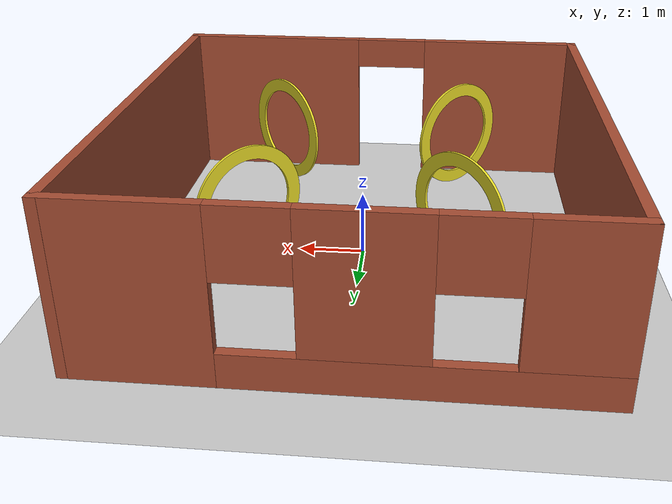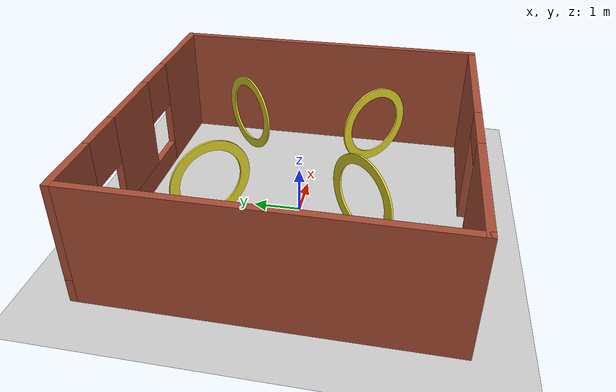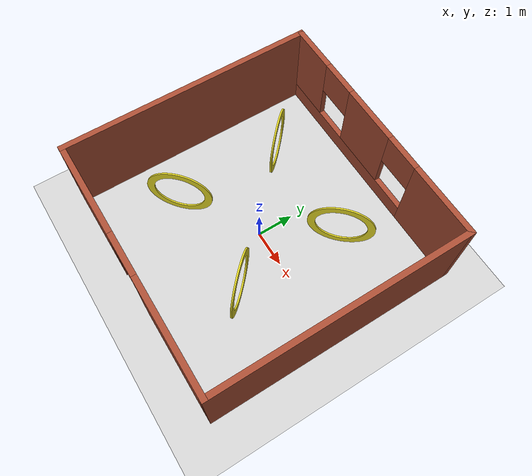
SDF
<sdf version='1.6'>
  <world name='default'>
    <light name='sun' type='directional'>
      <cast_shadows>1</cast_shadows>
      <pose frame=''>0 0 10 0 -0 0</pose>
      <diffuse>0.8 0.8 0.8 1</diffuse>
      <specular>0.2 0.2 0.2 1</specular>
      <attenuation>
        <range>1000</range>
        <constant>0.9</constant>
        <linear>0.01</linear>
        <quadratic>0.001</quadratic>
      </attenuation>
      <direction>-0.5 0.1 -0.9</direction>
    </light>
    <model name='ground_plane'>
      <static>1</static>
      <link name='link'>
        <collision name='collision'>
          <geometry>
            <plane>
              <normal>0 0 1</normal>
              <size>100 100</size>
            </plane>
          </geometry>
          <surface>
            <friction>
              <ode>
                <mu>100</mu>
                <mu2>50</mu2>
              </ode>
              <torsional>
                <ode/>
              </torsional>
            </friction>
            <contact>
              <ode/>
            </contact>
            <bounce/>
          </surface>
          <max_contacts>10</max_contacts>
        </collision>
        <visual name='visual'>
          <cast_shadows>0</cast_shadows>
          <geometry>
            <plane>
              <normal>0 0 1</normal>
              <size>100 100</size>
            </plane>
          </geometry>
          <material>
            <script>
              <uri>file://media/materials/scripts/gazebo.material</uri>
              <name>Gazebo/Grey</name>
            </script>
          </material>
        </visual>
        <self_collide>0</self_collide>
        <enable_wind>0</enable_wind>
        <kinematic>0</kinematic>
      </link>
    </model>
    <gravity>0 0 -9.8</gravity>
    <magnetic_field>6e-06 2.3e-05 -4.2e-05</magnetic_field>
    <atmosphere type='adiabatic'/>
    <physics name='default_physics' default='0' type='ode'>
      <max_step_size>0.001</max_step_size>
      <real_time_factor>1</real_time_factor>
      <real_time_update_rate>1000</real_time_update_rate>
    </physics>
    <scene>
      <ambient>0.4 0.4 0.4 1</ambient>
      <background>0.7 0.7 0.7 1</background>
      <shadows>1</shadows>
    </scene>
    <wind/>
    <spherical_coordinates>
      <surface_model>EARTH_WGS84</surface_model>
      <latitude_deg>0</latitude_deg>
      <longitude_deg>0</longitude_deg>
      <elevation>0</elevation>
      <heading_deg>0</heading_deg>
    </spherical_coordinates>
    <include>
      <name>circle_gate_0</name>
      <uri>model://circle_gate</uri>
      <pose>1.414 1.414 0.5 0 0 -0.7854</pose>
    </include>
    <include>
      <name>circle_gate_1</name>
      <uri>model://circle_gate</uri>
      <pose>-1.414 1.414 0.5 0 -0 0.7854</pose>
    </include>
    <include>
      <name>circle_gate_2</name>
      <uri>model://circle_gate</uri>
      <pose>-1.414 -1.414 0.5 0 -0 2.3562</pose>
    </include>
    <include>
      <name>circle_gate_3</name>
      <uri>model://circle_gate</uri>
      <pose>1.414 -1.414 0.5 0 -0 0.7854</pose>
    </include>
    <include>
      <name>room</name>
      <uri>model://room</uri>
      <pose>0 0 0 0 0 0</pose>
    </include>
    <gui fullscreen='0'>
      <camera name='user_camera'>
        <pose frame=''>6.23651 -0.107226 17.2856 0 1.2978 3.01304</pose>
        <view_controller>orbit</view_controller>
        <projection_type>perspective</projection_type>
      </camera>
    </gui>
  </world>
</sdf>

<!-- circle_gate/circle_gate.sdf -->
<sdf version="1.6">
  <model name="circle_gate">
  <static>1</static>
    <link name="link">
      <inertial>
        <mass>10.0</mass>
        <inertia>
          <ixx>10.0</ixx>
          <ixy>0.0</ixy>
          <ixz>0.0</ixz>
          <iyy>10.0</iyy>
          <iyz>0.0</iyz>
          <izz>10.0</izz>
        </inertia>
      </inertial>
      <collision name="collision">
        <pose>0 0 1 0 0 0</pose>
        <geometry>
          <mesh>
            <uri>model://circle_gate/meshes/circle_gate.stl</uri>
            <scale>1 1 1</scale>
          </mesh>
        </geometry>
      </collision>
      <visual name="visual">
        <pose>0 0 1 0 0 0</pose>
        <geometry>
          <mesh>
            <uri>model://circle_gate/meshes/circle_gate.stl</uri>
            <scale>1 1 1</scale>
          </mesh>
        </geometry>
        <material>
          <script>
            <uri>file://media/materials/scripts/gazebo.material</uri>
            <name>Gazebo/Yellow</name>
          </script>
       </material>
      </visual>
    </link>
  </model>
</sdf>

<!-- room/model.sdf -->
<sdf version='1.6'>
  <model name='room'>
    <pose frame=''>-2.67798 -7.40587 0 0 -0 0</pose>
    <link name='Wall_11'>
      <collision name='Wall_11_Collision'>
        <geometry>
          <box>
            <size>7 0.15 2.5</size>
          </box>
        </geometry>
        <pose frame=''>0 0 1.25 0 -0 0</pose>
      </collision>
      <visual name='Wall_11_Visual'>
        <pose frame=''>0 0 1.25 0 -0 0</pose>
        <geometry>
          <box>
            <size>7 0.15 2.5</size>
          </box>
        </geometry>
        <material>
          <script>
            <uri>file://media/materials/scripts/gazebo.material</uri>
            <name>Gazebo/Bricks</name>
          </script>
          <ambient>0.996078 0.47451 0.0196078 1</ambient>
        </material>
        <meta>
          <layer>0</layer>
        </meta>
      </visual>
      <pose frame=''>-3.425 0 0 0 -0 -1.5708</pose>
    </link>
    <link name='Wall_7'>
      <pose frame=''>-0 -3.425 0 0 -0 0</pose>
      <visual name='Wall_7_Visual_0'>
        <pose frame=''>-2.15492 0 1.25 0 -0 0</pose>
        <geometry>
          <box>
            <size>2.69015 0.15 2.5</size>
          </box>
        </geometry>
        <material>
          <script>
            <uri>file://media/materials/scripts/gazebo.material</uri>
            <name>Gazebo/Bricks</name>
          </script>
          <ambient>0.760784 0.662745 0.627451 1</ambient>
        </material>
        <meta>
          <layer>0</layer>
        </meta>
      </visual>
      <collision name='Wall_7_Collision_0'>
        <geometry>
          <box>
            <size>2.69015 0.15 2.5</size>
          </box>
        </geometry>
        <pose frame=''>-2.15492 0 1.25 0 -0 0</pose>
      </collision>
      <visual name='Wall_7_Visual_1'>
        <pose frame=''>1.94508 0 1.25 0 -0 0</pose>
        <geometry>
          <box>
            <size>3.10985 0.15 2.5</size>
          </box>
        </geometry>
        <material>
          <script>
            <uri>file://media/materials/scripts/gazebo.material</uri>
            <name>Gazebo/Bricks</name>
          </script>
          <ambient>0.760784 0.662745 0.627451 1</ambient>
        </material>
        <meta>
          <layer>0</layer>
        </meta>
      </visual>
      <collision name='Wall_7_Collision_1'>
        <geometry>
          <box>
            <size>3.10985 0.15 2.5</size>
          </box>
        </geometry>
        <pose frame=''>1.94508 0 1.25 0 -0 0</pose>
      </collision>
      <visual name='Wall_7_Visual_2'>
        <pose frame=''>-0.209846 0 2.25 0 -0 0</pose>
        <geometry>
          <box>
            <size>1.2 0.15 0.5</size>
          </box>
        </geometry>
        <material>
          <script>
            <uri>file://media/materials/scripts/gazebo.material</uri>
            <name>Gazebo/Bricks</name>
          </script>
          <ambient>0.760784 0.662745 0.627451 1</ambient>
        </material>
        <meta>
          <layer>0</layer>
        </meta>
      </visual>
      <collision name='Wall_7_Collision_2'>
        <geometry>
          <box>
            <size>1.2 0.15 0.5</size>
          </box>
        </geometry>
        <pose frame=''>-0.209846 0 2.25 0 -0 0</pose>
      </collision>
    </link>
    <link name='Wall_8'>
      <collision name='Wall_8_Collision'>
        <geometry>
          <box>
            <size>7 0.15 2.5</size>
          </box>
        </geometry>
        <pose frame=''>0 0 1.25 0 -0 0</pose>
      </collision>
      <visual name='Wall_8_Visual'>
        <pose frame=''>0 0 1.25 0 -0 0</pose>
        <geometry>
          <box>
            <size>7 0.15 2.5</size>
          </box>
        </geometry>
        <material>
          <script>
            <uri>file://media/materials/scripts/gazebo.material</uri>
            <name>Gazebo/Bricks</name>
          </script>
          <ambient>1 0.764706 0.305882 1</ambient>
        </material>
        <meta>
          <layer>0</layer>
        </meta>
      </visual>
      <pose frame=''>3.425 0 0 0 -0 1.5708</pose>
    </link>
    <link name='Wall_9'>
      <pose frame=''>-0 3.425 0 0 -0 3.14159</pose>
      <visual name='Wall_9_Visual_0'>
        <pose frame=''>-2.48491 0 1.25 0 -0 0</pose>
        <geometry>
          <box>
            <size>2.03018 0.15 2.5</size>
          </box>
        </geometry>
        <material>
          <script>
            <uri>file://media/materials/scripts/gazebo.material</uri>
            <name>Gazebo/Bricks</name>
          </script>
          <ambient>0.435294 0.796078 0.67451 1</ambient>
        </material>
        <meta>
          <layer>0</layer>
        </meta>
      </visual>
      <collision name='Wall_9_Collision_0'>
        <geometry>
          <box>
            <size>2.03018 0.15 2.5</size>
          </box>
        </geometry>
        <pose frame=''>-2.48491 0 1.25 0 -0 0</pose>
      </collision>
      <visual name='Wall_9_Visual_1'>
        <pose frame=''>1.01509 0 0.25 0 -0 0</pose>
        <geometry>
          <box>
            <size>4.96981 0.15 0.5</size>
          </box>
        </geometry>
        <material>
          <script>
            <uri>file://media/materials/scripts/gazebo.material</uri>
            <name>Gazebo/Bricks</name>
          </script>
          <ambient>0.435294 0.796078 0.67451 1</ambient>
        </material>
        <meta>
          <layer>0</layer>
        </meta>
      </visual>
      <collision name='Wall_9_Collision_1'>
        <geometry>
          <box>
            <size>4.96981 0.15 0.5</size>
          </box>
        </geometry>
        <pose frame=''>1.01509 0 0.25 0 -0 0</pose>
      </collision>
      <visual name='Wall_9_Visual_2'>
        <pose frame=''>0.337064 0 1.5 0 -0 0</pose>
        <geometry>
          <box>
            <size>1.61376 0.15 2</size>
          </box>
        </geometry>
        <material>
          <script>
            <uri>file://media/materials/scripts/gazebo.material</uri>
            <name>Gazebo/Bricks</name>
          </script>
          <ambient>0.435294 0.796078 0.67451 1</ambient>
        </material>
        <meta>
          <layer>0</layer>
        </meta>
      </visual>
      <collision name='Wall_9_Collision_2'>
        <geometry>
          <box>
            <size>1.61376 0.15 2</size>
          </box>
        </geometry>
        <pose frame=''>0.337064 0 1.5 0 -0 0</pose>
      </collision>
      <visual name='Wall_9_Visual_3'>
        <pose frame=''>2.82197 0 1.5 0 -0 0</pose>
        <geometry>
          <box>
            <size>1.35606 0.15 2</size>
          </box>
        </geometry>
        <material>
          <script>
            <uri>file://media/materials/scripts/gazebo.material</uri>
            <name>Gazebo/Bricks</name>
          </script>
          <ambient>0.435294 0.796078 0.67451 1</ambient>
        </material>
        <meta>
          <layer>0</layer>
        </meta>
      </visual>
      <collision name='Wall_9_Collision_3'>
        <geometry>
          <box>
            <size>1.35606 0.15 2</size>
          </box>
        </geometry>
        <pose frame=''>2.82197 0 1.5 0 -0 0</pose>
      </collision>
      <visual name='Wall_9_Visual_4'>
        <pose frame=''>-0.969815 0 2 0 -0 0</pose>
        <geometry>
          <box>
            <size>1 0.15 1</size>
          </box>
        </geometry>
        <material>
          <script>
            <uri>file://media/materials/scripts/gazebo.material</uri>
            <name>Gazebo/Bricks</name>
          </script>
          <ambient>0.435294 0.796078 0.67451 1</ambient>
        </material>
        <meta>
          <layer>0</layer>
        </meta>
      </visual>
      <collision name='Wall_9_Collision_4'>
        <geometry>
          <box>
            <size>1 0.15 1</size>
          </box>
        </geometry>
        <pose frame=''>-0.969815 0 2 0 -0 0</pose>
      </collision>
      <visual name='Wall_9_Visual_5'>
        <pose frame=''>1.64394 0 2 0 -0 0</pose>
        <geometry>
          <box>
            <size>1 0.15 1</size>
          </box>
        </geometry>
        <material>
          <script>
            <uri>file://media/materials/scripts/gazebo.material</uri>
            <name>Gazebo/Bricks</name>
          </script>
          <ambient>0.435294 0.796078 0.67451 1</ambient>
        </material>
        <meta>
          <layer>0</layer>
        </meta>
      </visual>
      <collision name='Wall_9_Collision_5'>
        <geometry>
          <box>
            <size>1 0.15 1</size>
          </box>
        </geometry>
        <pose frame=''>1.64394 0 2 0 -0 0</pose>
      </collision>
    </link>
    <static>1</static>
  </model>
</sdf>
